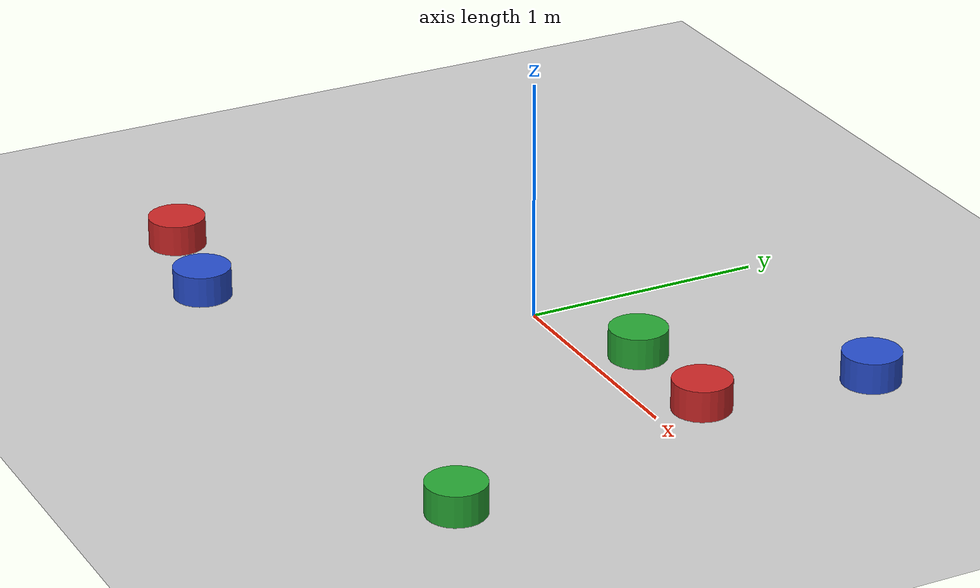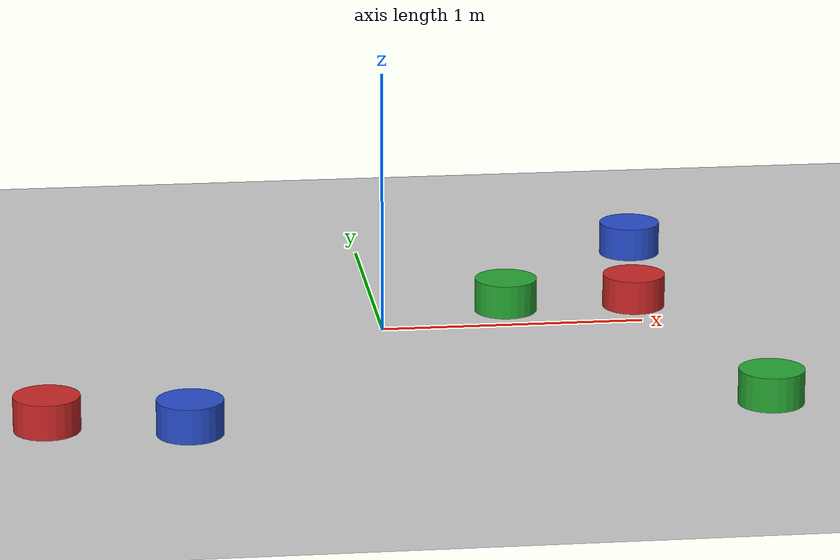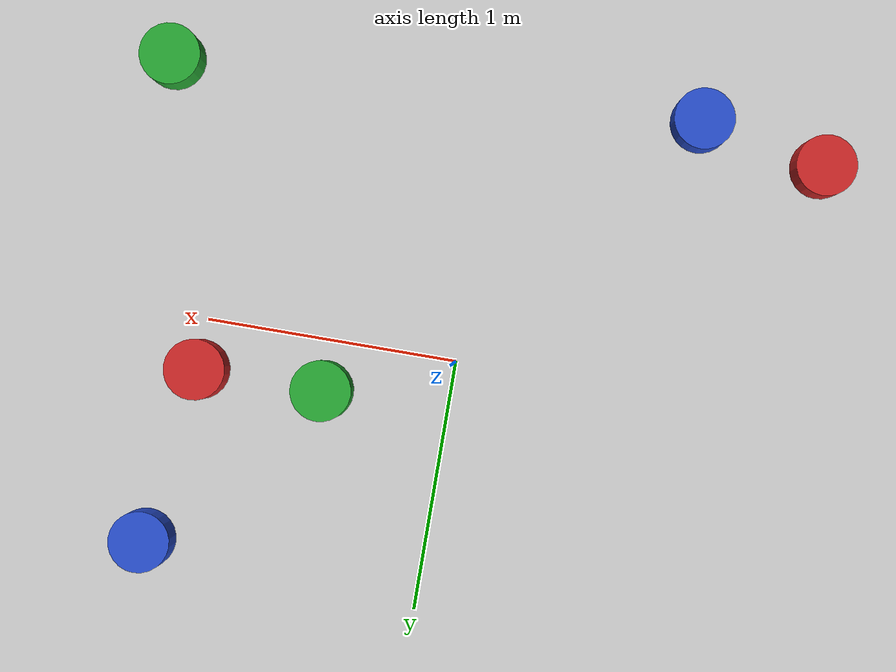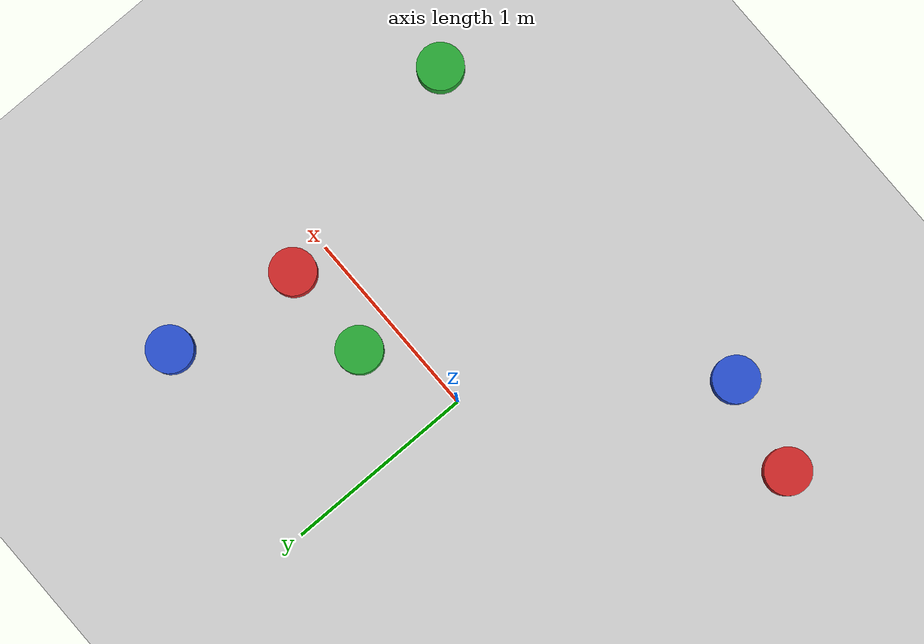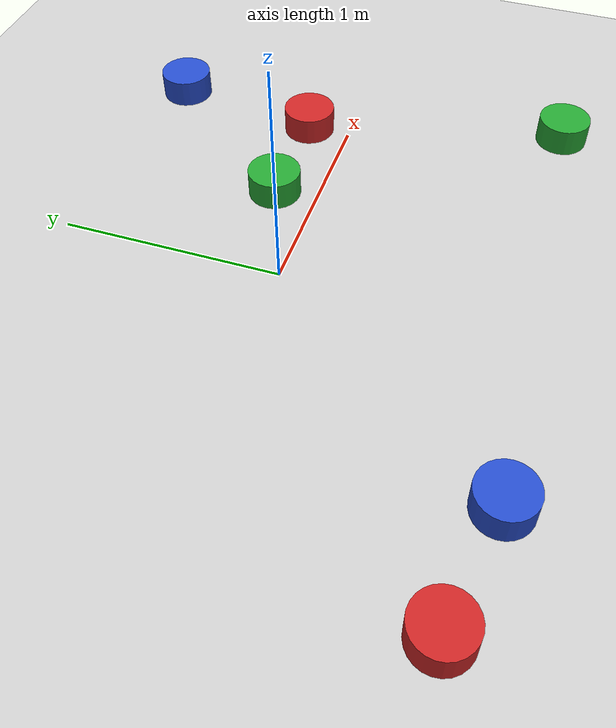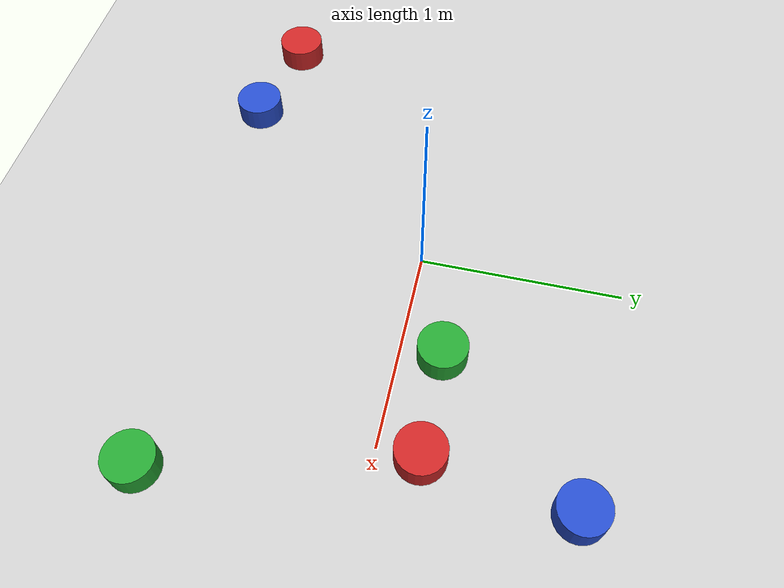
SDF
<sdf version="1.6">
 <world name="default">
  <include><uri>model://sun</uri></include>
  <include><uri>model://ground_plane</uri></include>
  <physics type="ode">
   <real_time_update_rate>1000.0</real_time_update_rate>
   <max_step_size>0.001</max_step_size>
   <real_time_factor>1</real_time_factor>
   <ode>
    <solver>
     <type>quick</type>
     <iters>150</iters>
     <precon_iters>0</precon_iters>
     <sor>1.400000</sor>
     <use_dynamic_moi_rescaling>1</use_dynamic_moi_rescaling>
    </solver>
    <constraints>
     <cfm>0.00001</cfm>
     <erp>0.2</erp>
     <contact_max_correcting_vel>2000.000000</contact_max_correcting_vel>
     <contact_surface_layer>0.01000</contact_surface_layer>
    </constraints>
   </ode>
  </physics>
  <model name="obstacle_1">
   <pose>-1.3 -1.0 0 0 0 0</pose>
   <link name="link">
    <inertial>
     <mass>0.001</mass>
     <inertia><ixx>0.01</ixx><ixy>0.01</ixy><ixz>0.01</ixz><iyy>0.01</iyy><iyz>0.01</iyz><izz>0.01</izz></inertia>
    </inertial>
    <collision name="collision">
     <geometry><cylinder><radius>0.12</radius><length>0.25</length></cylinder></geometry>
     <surface><friction><ode><mu>0.001</mu><mu2>0.001</mu2></ode></friction></surface>
    </collision>
    <visual name="visual">
     <geometry><cylinder><radius>0.12</radius><length>0.25</length></cylinder></geometry>
     <material>
      <script><uri>file://media/materials/scripts/gazebo.material</uri><name>Gazebo/Red</name></script>
     </material>
    </visual>
   </link>
  </model>
  <model name="obstacle_2">
   <pose>1.0 0.2 0 0 0 0</pose>
   <link name="link">
    <inertial>
     <mass>0.001</mass>
     <inertia><ixx>0.01</ixx><ixy>0.01</ixy><ixz>0.01</ixz><iyy>0.01</iyy><iyz>0.01</iyz><izz>0.01</izz></inertia>
    </inertial>
    <collision name="collision">
     <geometry><cylinder><radius>0.12</radius><length>0.25</length></cylinder></geometry>
     <surface><friction><ode><mu>0.001</mu><mu2>0.001</mu2></ode></friction></surface>
    </collision>
    <visual name="visual">
     <geometry><cylinder><radius>0.12</radius><length>0.25</length></cylinder></geometry>
     <material>
      <script><uri>file://media/materials/scripts/gazebo.material</uri><name>Gazebo/Red</name></script>
     </material>
    </visual>
   </link>
  </model>
  <model name="obstacle_3">
   <pose>-0.8 -1.1 0 0 0 0</pose>
   <link name="link">
    <inertial>
     <mass>0.001</mass>
     <inertia><ixx>0.01</ixx><ixy>0.01</ixy><ixz>0.01</ixz><iyy>0.01</iyy><iyz>0.01</iyz><izz>0.01</izz></inertia>
    </inertial>
    <collision name="collision">
     <geometry><cylinder><radius>0.12</radius><length>0.25</length></cylinder></geometry>
     <surface><friction><ode><mu>0.001</mu><mu2>0.001</mu2></ode></friction></surface>
    </collision>
    <visual name="visual">
     <geometry><cylinder><radius>0.12</radius><length>0.25</length></cylinder></geometry>
     <material>
      <script><uri>file://media/materials/scripts/gazebo.material</uri><name>Gazebo/Blue</name></script>
     </material>
    </visual>
   </link>
  </model>
  <model name="obstacle_4">
   <pose>1.1 0.9 0 0 0 0</pose>
   <link name="link">
    <inertial>
     <mass>0.001</mass>
     <inertia><ixx>0.01</ixx><ixy>0.01</ixy><ixz>0.01</ixz><iyy>0.01</iyy><iyz>0.01</iyz><izz>0.01</izz></inertia>
    </inertial>
    <collision name="collision">
     <geometry><cylinder><radius>0.12</radius><length>0.25</length></cylinder></geometry>
     <surface><friction><ode><mu>0.001</mu><mu2>0.001</mu2></ode></friction></surface>
    </collision>
    <visual name="visual">
     <geometry><cylinder><radius>0.12</radius><length>0.25</length></cylinder></geometry>
     <material>
      <script><uri>file://media/materials/scripts/gazebo.material</uri><name>Gazebo/Blue</name></script>
     </material>
    </visual>
   </link>
  </model>
  <model name="obstacle_5">
   <pose>1.3 -1.0 0 0 0 0</pose>
   <link name="link">
    <inertial>
     <mass>0.001</mass>
     <inertia><ixx>0.01</ixx><ixy>0.01</ixy><ixz>0.01</ixz><iyy>0.01</iyy><iyz>0.01</iyz><izz>0.01</izz></inertia>
    </inertial>
    <collision name="collision">
     <geometry><cylinder><radius>0.12</radius><length>0.25</length></cylinder></geometry>
     <surface><friction><ode><mu>0.001</mu><mu2>0.001</mu2></ode></friction></surface>
    </collision>
    <visual name="visual">
     <geometry><cylinder><radius>0.12</radius><length>0.25</length></cylinder></geometry>
     <material>
      <script><uri>file://media/materials/scripts/gazebo.material</uri><name>Gazebo/Green</name></script>
     </material>
    </visual>
   </link>
  </model>
  <model name="obstacle_6">
   <pose>0.5 0.2 0 0 0 0</pose>
   <link name="link">
    <inertial>
     <mass>0.001</mass>
     <inertia><ixx>0.01</ixx><ixy>0.01</ixy><ixz>0.01</ixz><iyy>0.01</iyy><iyz>0.01</iyz><izz>0.01</izz></inertia>
    </inertial>
    <collision name="collision">
     <geometry><cylinder><radius>0.12</radius><length>0.25</length></cylinder></geometry>
     <surface><friction><ode><mu>0.001</mu><mu2>0.001</mu2></ode></friction></surface>
    </collision>
    <visual name="visual">
     <geometry><cylinder><radius>0.12</radius><length>0.25</length></cylinder></geometry>
     <material>
      <script><uri>file://media/materials/scripts/gazebo.material</uri><name>Gazebo/Green</name></script>
     </material>
    </visual>
   </link>
  </model>
  <scene><ambient>0.4 0.4 0.4 1</ambient><background>0.7 0.7 0.7 1</background><shadows>true</shadows></scene>
 </world>
</sdf>
